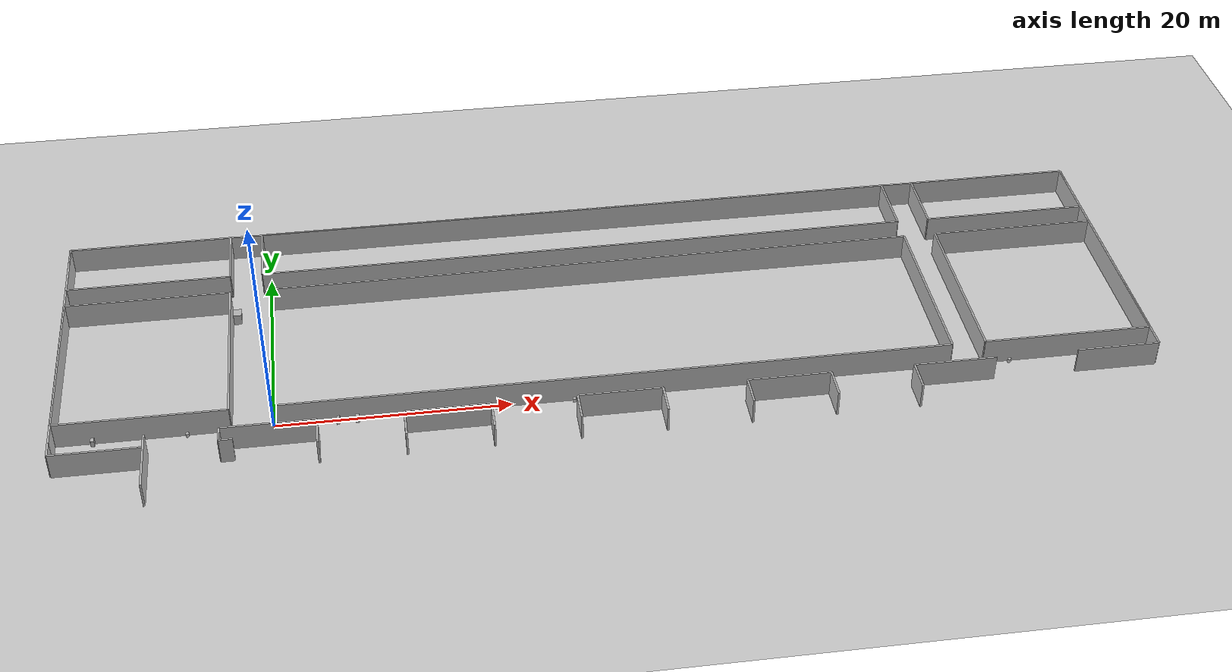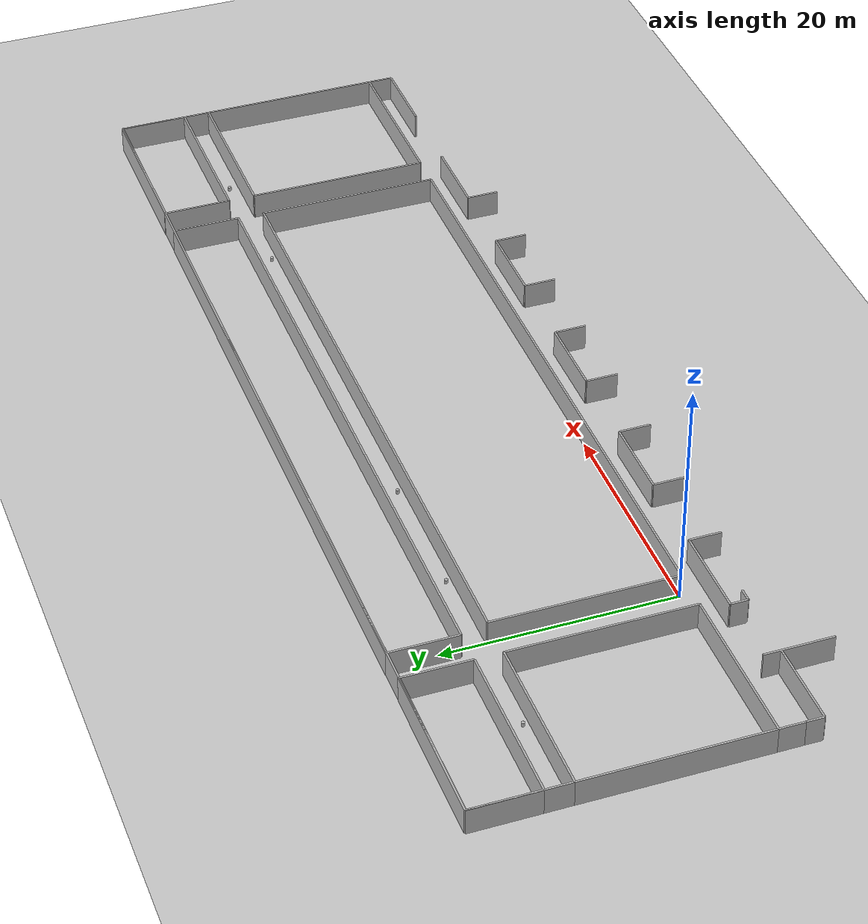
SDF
<sdf version='1.6'>
  <world name='default'>
    <light name='sun' type='directional'>
      <cast_shadows>1</cast_shadows>
      <pose frame=''>0 0 10 0 -0 0</pose>
      <diffuse>0.8 0.8 0.8 1</diffuse>
      <specular>0.2 0.2 0.2 1</specular>
      <attenuation>
        <range>1000</range>
        <constant>0.9</constant>
        <linear>0.01</linear>
        <quadratic>0.001</quadratic>
      </attenuation>
      <direction>-0.5 0.1 -0.9</direction>
    </light>
    <model name='ground_plane'>
      <static>1</static>
      <link name='link'>
        <collision name='collision'>
          <geometry>
            <plane>
              <normal>0 0 1</normal>
              <size>100 100</size>
            </plane>
          </geometry>
          <surface>
            <friction>
              <ode>
                <mu>100</mu>
                <mu2>50</mu2>
              </ode>
              <torsional>
                <ode/>
              </torsional>
            </friction>
            <contact>
              <ode/>
            </contact>
            <bounce/>
          </surface>
          <max_contacts>10</max_contacts>
        </collision>
        <visual name='visual'>
          <cast_shadows>0</cast_shadows>
          <geometry>
            <plane>
              <normal>0 0 1</normal>
              <size>100 100</size>
            </plane>
          </geometry>
          <material>
            <script>
              <uri>file://media/materials/scripts/gazebo.material</uri>
              <name>Gazebo/Grey</name>
            </script>
          </material>
        </visual>
      </link>
    </model>
    <model name='model_0'>
      <pose frame=''>0 0 1 0 -0 0</pose>
      <link name='Wall_0'>
        <pose frame=''>28.988 0 0 0 -0 0</pose>
        <collision name='Wall_0_Collision'>
          <geometry>
            <box>
              <size>57.976 0.169 2.5</size>
            </box>
          </geometry>
        </collision>
        <visual name='Wall_0_Visual'>
          <geometry>
            <box>
              <size>57.976 0.169 2.5</size>
            </box>
          </geometry>
        </visual>
      </link>
      <link name='Wall_1'>
        <pose frame=''>28.988 16 0 0 -0 0</pose>
        <collision name='Wall_1_Collision'>
          <geometry>
            <box>
              <size>57.976 0.169 2.5</size>
            </box>
          </geometry>
        </collision>
        <visual name='Wall_1_Visual'>
          <geometry>
            <box>
              <size>57.976 0.169 2.5</size>
            </box>
          </geometry>
        </visual>
      </link>
      <link name='Wall_2'>
        <pose frame=''>0 8 0 0 -0 1.5707</pose>
        <collision name='Wall_2_Collision'>
          <geometry>
            <box>
              <size>16 0.169 2.5</size>
            </box>
          </geometry>
        </collision>
        <visual name='Wall_2_Visual'>
          <geometry>
            <box>
              <size>16 0.169 2.5</size>
            </box>
          </geometry>
        </visual>
      </link>
      <link name='Wall_3'>
        <pose frame=''>57.976 8 0 0 -0 1.5707</pose>
        <collision name='Wall_3_Collision'>
          <geometry>
            <box>
              <size>16 0.169 2.5</size>
            </box>
          </geometry>
        </collision>
        <visual name='Wall_3_Visual'>
          <geometry>
            <box>
              <size>16 0.169 2.5</size>
            </box>
          </geometry>
        </visual>
      </link>
      <static>1</static>
    </model>
    <model name='model_1'>
      <pose frame=''>60.9 0 1 0 -0 0</pose>
      <link name='Wall_0'>
        <pose frame=''>7.369 0 0 0 -0 0</pose>
        <collision name='Wall_0_Collision'>
          <geometry>
            <box>
              <size>14.738 0.169 2.5</size>
            </box>
          </geometry>
        </collision>
        <visual name='Wall_0_Visual'>
          <geometry>
            <box>
              <size>14.738 0.169 2.5</size>
            </box>
          </geometry>
        </visual>
      </link>
      <link name='Wall_1'>
        <pose frame=''>7.369 16 0 0 -0 0</pose>
        <collision name='Wall_1_Collision'>
          <geometry>
            <box>
              <size>14.738 0.169 2.5</size>
            </box>
          </geometry>
        </collision>
        <visual name='Wall_1_Visual'>
          <geometry>
            <box>
              <size>14.738 0.169 2.5</size>
            </box>
          </geometry>
        </visual>
      </link>
      <link name='Wall_2'>
        <pose frame=''>0 8 0 0 -0 1.5707</pose>
        <collision name='Wall_2_Collision'>
          <geometry>
            <box>
              <size>16 0.169 2.5</size>
            </box>
          </geometry>
        </collision>
        <visual name='Wall_2_Visual'>
          <geometry>
            <box>
              <size>16 0.169 2.5</size>
            </box>
          </geometry>
        </visual>
      </link>
      <link name='Wall_3'>
        <pose frame=''>14.738 8 0 0 -0 1.5707</pose>
        <collision name='Wall_3_Collision'>
          <geometry>
            <box>
              <size>16 0.169 2.5</size>
            </box>
          </geometry>
        </collision>
        <visual name='Wall_3_Visual'>
          <geometry>
            <box>
              <size>16 0.169 2.5</size>
            </box>
          </geometry>
        </visual>
      </link>
      <static>1</static>
    </model>
    <model name='model_2'>
      <pose frame=''>-17.962 0 1 0 -0 0</pose>
      <link name='Wall_0'>
        <pose frame=''>7.219 0 0 0 -0 0</pose>
        <collision name='Wall_0_Collision'>
          <geometry>
            <box>
              <size>14.438 0.169 2.5</size>
            </box>
          </geometry>
        </collision>
        <visual name='Wall_0_Visual'>
          <geometry>
            <box>
              <size>14.438 0.169 2.5</size>
            </box>
          </geometry>
        </visual>
      </link>
      <link name='Wall_1'>
        <pose frame=''>7.219 16 0 0 -0 0</pose>
        <collision name='Wall_1_Collision'>
          <geometry>
            <box>
              <size>14.438 0.169 2.5</size>
            </box>
          </geometry>
        </collision>
        <visual name='Wall_1_Visual'>
          <geometry>
            <box>
              <size>14.438 0.169 2.5</size>
            </box>
          </geometry>
        </visual>
      </link>
      <link name='Wall_2'>
        <pose frame=''>0 8 0 0 -0 1.5707</pose>
        <collision name='Wall_2_Collision'>
          <geometry>
            <box>
              <size>16 0.169 2.5</size>
            </box>
          </geometry>
        </collision>
        <visual name='Wall_2_Visual'>
          <geometry>
            <box>
              <size>16 0.169 2.5</size>
            </box>
          </geometry>
        </visual>
      </link>
      <link name='Wall_3'>
        <pose frame=''>14.438 8 0 0 -0 1.5707</pose>
        <collision name='Wall_3_Collision'>
          <geometry>
            <box>
              <size>16 0.169 2.5</size>
            </box>
          </geometry>
        </collision>
        <visual name='Wall_3_Visual'>
          <geometry>
            <box>
              <size>16 0.169 2.5</size>
            </box>
          </geometry>
        </visual>
      </link>
      <static>1</static>
    </model>
    <model name='model_3'>
      <pose frame=''>-17.962 18.362 1 0 -0 0</pose>
      <link name='Wall_0'>
        <pose frame=''>7.219 0 0 0 -0 0</pose>
        <collision name='Wall_0_Collision'>
          <geometry>
            <box>
              <size>14.438 0.169 2.5</size>
            </box>
          </geometry>
        </collision>
        <visual name='Wall_0_Visual'>
          <geometry>
            <box>
              <size>14.438 0.169 2.5</size>
            </box>
          </geometry>
        </visual>
      </link>
      <link name='Wall_1'>
        <pose frame=''>7.219 6 0 0 -0 0</pose>
        <collision name='Wall_1_Collision'>
          <geometry>
            <box>
              <size>14.438 0.169 2.5</size>
            </box>
          </geometry>
        </collision>
        <visual name='Wall_1_Visual'>
          <geometry>
            <box>
              <size>14.438 0.169 2.5</size>
            </box>
          </geometry>
        </visual>
      </link>
      <link name='Wall_2'>
        <pose frame=''>0 3 0 0 -0 1.5707</pose>
        <collision name='Wall_2_Collision'>
          <geometry>
            <box>
              <size>6 0.169 2.5</size>
            </box>
          </geometry>
        </collision>
        <visual name='Wall_2_Visual'>
          <geometry>
            <box>
              <size>6 0.169 2.5</size>
            </box>
          </geometry>
        </visual>
      </link>
      <link name='Wall_3'>
        <pose frame=''>14.438 3 0 0 -0 1.5707</pose>
        <collision name='Wall_3_Collision'>
          <geometry>
            <box>
              <size>6 0.169 2.5</size>
            </box>
          </geometry>
        </collision>
        <visual name='Wall_3_Visual'>
          <geometry>
            <box>
              <size>6 0.169 2.5</size>
            </box>
          </geometry>
        </visual>
      </link>
      <static>1</static>
    </model>
    <model name='model_4'>
      <pose frame=''>-0.636 18.362 1 0 -0 0</pose>
      <link name='Wall_0'>
        <pose frame=''>29.306 0 0 0 -0 0</pose>
        <collision name='Wall_0_Collision'>
          <geometry>
            <box>
              <size>58.612 0.169 2.5</size>
            </box>
          </geometry>
        </collision>
        <visual name='Wall_0_Visual'>
          <geometry>
            <box>
              <size>58.612 0.169 2.5</size>
            </box>
          </geometry>
        </visual>
      </link>
      <link name='Wall_1'>
        <pose frame=''>29.306 6 0 0 -0 0</pose>
        <collision name='Wall_1_Collision'>
          <geometry>
            <box>
              <size>58.612 0.169 2.5</size>
            </box>
          </geometry>
        </collision>
        <visual name='Wall_1_Visual'>
          <geometry>
            <box>
              <size>58.612 0.169 2.5</size>
            </box>
          </geometry>
        </visual>
      </link>
      <link name='Wall_2'>
        <pose frame=''>0 3 0 0 -0 1.5707</pose>
        <collision name='Wall_2_Collision'>
          <geometry>
            <box>
              <size>6 0.169 2.5</size>
            </box>
          </geometry>
        </collision>
        <visual name='Wall_2_Visual'>
          <geometry>
            <box>
              <size>6 0.169 2.5</size>
            </box>
          </geometry>
        </visual>
      </link>
      <link name='Wall_3'>
        <pose frame=''>58.612 3 0 0 -0 1.5707</pose>
        <collision name='Wall_3_Collision'>
          <geometry>
            <box>
              <size>6 0.169 2.5</size>
            </box>
          </geometry>
        </collision>
        <visual name='Wall_3_Visual'>
          <geometry>
            <box>
              <size>6 0.169 2.5</size>
            </box>
          </geometry>
        </visual>
      </link>
      <static>1</static>
    </model>
    <model name='model_5'>
      <pose frame=''>60.9 18.362 1 0 -0 0</pose>
      <link name='Wall_0'>
        <pose frame=''>7.369 0 0 0 -0 0</pose>
        <collision name='Wall_0_Collision'>
          <geometry>
            <box>
              <size>14.738 0.169 2.5</size>
            </box>
          </geometry>
        </collision>
        <visual name='Wall_0_Visual'>
          <geometry>
            <box>
              <size>14.738 0.169 2.5</size>
            </box>
          </geometry>
        </visual>
      </link>
      <link name='Wall_1'>
        <pose frame=''>7.369 6 0 0 -0 0</pose>
        <collision name='Wall_1_Collision'>
          <geometry>
            <box>
              <size>14.738 0.169 2.5</size>
            </box>
          </geometry>
        </collision>
        <visual name='Wall_1_Visual'>
          <geometry>
            <box>
              <size>14.738 0.169 2.5</size>
            </box>
          </geometry>
        </visual>
      </link>
      <link name='Wall_2'>
        <pose frame=''>0 3 0 0 -0 1.5707</pose>
        <collision name='Wall_2_Collision'>
          <geometry>
            <box>
              <size>6 0.169 2.5</size>
            </box>
          </geometry>
        </collision>
        <visual name='Wall_2_Visual'>
          <geometry>
            <box>
              <size>6 0.169 2.5</size>
            </box>
          </geometry>
        </visual>
      </link>
      <link name='Wall_3'>
        <pose frame=''>14.738 3 0 0 -0 1.5707</pose>
        <collision name='Wall_3_Collision'>
          <geometry>
            <box>
              <size>6 0.169 2.5</size>
            </box>
          </geometry>
        </collision>
        <visual name='Wall_3_Visual'>
          <geometry>
            <box>
              <size>6 0.169 2.5</size>
            </box>
          </geometry>
        </visual>
      </link>
      <static>1</static>
    </model>
    <model name='model_6'>
      <pose frame=''>-17.962 -2.202 1 0 -0 0</pose>
      <link name='Wall_0'>
        <pose frame=''>0 -0.755 0 0 -0 1.5707</pose>
        <collision name='Wall_0_Collision'>
          <geometry>
            <box>
              <size>1.51 0.169 2.5</size>
            </box>
          </geometry>
        </collision>
        <visual name='Wall_0_Visual'>
          <geometry>
            <box>
              <size>1.51 0.169 2.5</size>
            </box>
          </geometry>
        </visual>
      </link>
      <link name='Wall_1'>
        <pose frame=''>3.809 -1.51 0 0 -0 0</pose>
        <collision name='Wall_1_Collision'>
          <geometry>
            <box>
              <size>7.618 0.169 2.5</size>
            </box>
          </geometry>
        </collision>
        <visual name='Wall_1_Visual'>
          <geometry>
            <box>
              <size>7.618 0.169 2.5</size>
            </box>
          </geometry>
        </visual>
      </link>
      <link name='Wall_2'>
        <pose frame=''>7.618 -3.005 0 0 -0 1.5707</pose>
        <collision name='Wall_2_Collision'>
          <geometry>
            <box>
              <size>6.01 0.169 2.5</size>
            </box>
          </geometry>
        </collision>
        <visual name='Wall_2_Visual'>
          <geometry>
            <box>
              <size>6.01 0.169 2.5</size>
            </box>
          </geometry>
        </visual>
      </link>
      <link name='Wall_3'>
        <pose frame=''>13.638 -0.755 0 0 -0 1.5707</pose>
        <collision name='Wall_3_Collision'>
          <geometry>
            <box>
              <size>1.51 0.169 2.5</size>
            </box>
          </geometry>
        </collision>
        <visual name='Wall_3_Visual'>
          <geometry>
            <box>
              <size>1.51 0.169 2.5</size>
            </box>
          </geometry>
        </visual>
      </link>
      <link name='Wall_4'>
        <pose frame=''>14.214 -1.51 0 0 -0 0</pose>
        <collision name='Wall_4_Collision'>
          <geometry>
            <box>
              <size>1.152 0.169 2.5</size>
            </box>
          </geometry>
        </collision>
        <visual name='Wall_4_Visual'>
          <geometry>
            <box>
              <size>1.152 0.169 2.5</size>
            </box>
          </geometry>
        </visual>
      </link>
      <link name='Wall_5'>
        <pose frame=''>17.619 0 0 0 -0 0</pose>
        <collision name='Wall_5_Collision'>
          <geometry>
            <box>
              <size>7.962 0.169 2.5</size>
            </box>
          </geometry>
        </collision>
        <visual name='Wall_5_Visual'>
          <geometry>
            <box>
              <size>7.962 0.169 2.5</size>
            </box>
          </geometry>
        </visual>
      </link>
      <link name='Wall_6'>
        <pose frame=''>21.6 -1.39375 0 0 -0 1.5707</pose>
        <collision name='Wall_6_Collision'>
          <geometry>
            <box>
              <size>2.7875 0.169 2.5</size>
            </box>
          </geometry>
        </collision>
        <visual name='Wall_6_Visual'>
          <geometry>
            <box>
              <size>2.7875 0.169 2.5</size>
            </box>
          </geometry>
        </visual>
      </link>
      <link name='Wall_7'>
        <pose frame=''>28.8 -1.39375 0 0 -0 1.5707</pose>
        <collision name='Wall_7_Collision'>
          <geometry>
            <box>
              <size>2.7875 0.169 2.5</size>
            </box>
          </geometry>
        </collision>
        <visual name='Wall_7_Visual'>
          <geometry>
            <box>
              <size>2.7875 0.169 2.5</size>
            </box>
          </geometry>
        </visual>
      </link>
      <link name='Wall_8'>
        <pose frame=''>32.4 0 0 0 -0 0</pose>
        <collision name='Wall_8_Collision'>
          <geometry>
            <box>
              <size>7.2 0.169 2.5</size>
            </box>
          </geometry>
        </collision>
        <visual name='Wall_8_Visual'>
          <geometry>
            <box>
              <size>7.2 0.169 2.5</size>
            </box>
          </geometry>
        </visual>
      </link>
      <link name='Wall_9'>
        <pose frame=''>36 -1.39375 0 0 -0 1.5707</pose>
        <collision name='Wall_9_Collision'>
          <geometry>
            <box>
              <size>2.7875 0.169 2.5</size>
            </box>
          </geometry>
        </collision>
        <visual name='Wall_9_Visual'>
          <geometry>
            <box>
              <size>2.7875 0.169 2.5</size>
            </box>
          </geometry>
        </visual>
      </link>
      <link name='Wall_10'>
        <pose frame=''>43.2 -1.39375 0 0 -0 1.5707</pose>
        <collision name='Wall_10_Collision'>
          <geometry>
            <box>
              <size>2.7875 0.169 2.5</size>
            </box>
          </geometry>
        </collision>
        <visual name='Wall_10_Visual'>
          <geometry>
            <box>
              <size>2.7875 0.169 2.5</size>
            </box>
          </geometry>
        </visual>
      </link>
      <link name='Wall_11'>
        <pose frame=''>46.8 0 0 0 -0 0</pose>
        <collision name='Wall_11_Collision'>
          <geometry>
            <box>
              <size>7.2 0.169 2.5</size>
            </box>
          </geometry>
        </collision>
        <visual name='Wall_11_Visual'>
          <geometry>
            <box>
              <size>7.2 0.169 2.5</size>
            </box>
          </geometry>
        </visual>
      </link>
      <link name='Wall_12'>
        <pose frame=''>50.4 -1.39375 0 0 -0 1.5707</pose>
        <collision name='Wall_12_Collision'>
          <geometry>
            <box>
              <size>2.7875 0.169 2.5</size>
            </box>
          </geometry>
        </collision>
        <visual name='Wall_12_Visual'>
          <geometry>
            <box>
              <size>2.7875 0.169 2.5</size>
            </box>
          </geometry>
        </visual>
      </link>
      <link name='Wall_13'>
        <pose frame=''>57.6 -1.39375 0 0 -0 1.5707</pose>
        <collision name='Wall_13_Collision'>
          <geometry>
            <box>
              <size>2.7875 0.169 2.5</size>
            </box>
          </geometry>
        </collision>
        <visual name='Wall_13_Visual'>
          <geometry>
            <box>
              <size>2.7875 0.169 2.5</size>
            </box>
          </geometry>
        </visual>
      </link>
      <link name='Wall_14'>
        <pose frame=''>61.2 0 0 0 -0 0</pose>
        <collision name='Wall_14_Collision'>
          <geometry>
            <box>
              <size>7.2 0.169 2.5</size>
            </box>
          </geometry>
        </collision>
        <visual name='Wall_14_Visual'>
          <geometry>
            <box>
              <size>7.2 0.169 2.5</size>
            </box>
          </geometry>
        </visual>
      </link>
      <link name='Wall_15'>
        <pose frame=''>64.8 -1.39375 0 0 -0 1.5707</pose>
        <collision name='Wall_15_Collision'>
          <geometry>
            <box>
              <size>2.7875 0.169 2.5</size>
            </box>
          </geometry>
        </collision>
        <visual name='Wall_15_Visual'>
          <geometry>
            <box>
              <size>2.7875 0.169 2.5</size>
            </box>
          </geometry>
        </visual>
      </link>
      <link name='Wall_16'>
        <pose frame=''>72 -1.39375 0 0 -0 1.5707</pose>
        <collision name='Wall_16_Collision'>
          <geometry>
            <box>
              <size>2.7875 0.169 2.5</size>
            </box>
          </geometry>
        </collision>
        <visual name='Wall_16_Visual'>
          <geometry>
            <box>
              <size>2.7875 0.169 2.5</size>
            </box>
          </geometry>
        </visual>
      </link>
      <link name='Wall_17'>
        <pose frame=''>75.6 0 0 0 -0 0</pose>
        <collision name='Wall_17_Collision'>
          <geometry>
            <box>
              <size>7.2 0.169 2.5</size>
            </box>
          </geometry>
        </collision>
        <visual name='Wall_17_Visual'>
          <geometry>
            <box>
              <size>7.2 0.169 2.5</size>
            </box>
          </geometry>
        </visual>
      </link>
      <link name='Wall_18'>
        <pose frame=''>90 0 0 0 -0 0</pose>
        <collision name='Wall_18_Collision'>
          <geometry>
            <box>
              <size>7.2 0.169 2.5</size>
            </box>
          </geometry>
        </collision>
        <visual name='Wall_18_Visual'>
          <geometry>
            <box>
              <size>7.2 0.169 2.5</size>
            </box>
          </geometry>
        </visual>
      </link>
      <static>1</static>
    </model>
    <model name='model_7'>
      <pose frame=''>-17.962 -2.202 1 0 -0 0</pose>
      <link name='Wall_0'>
        <pose frame=''>0 13.27 0 0 -0 1.5707</pose>
        <collision name='Wall_0_Collision'>
          <geometry>
            <box>
              <size>26.54 0.16 2.5</size>
            </box>
          </geometry>
        </collision>
        <visual name='Wall_0_Visual'>
          <geometry>
            <box>
              <size>26.54 0.16 2.5</size>
            </box>
          </geometry>
        </visual>
      </link>
      <link name='Wall_1'>
        <pose frame=''>46.8 26.54 0 0 -0 0</pose>
        <collision name='Wall_1_Collision'>
          <geometry>
            <box>
              <size>93.6 0.16 2.5</size>
            </box>
          </geometry>
        </collision>
        <visual name='Wall_1_Visual'>
          <geometry>
            <box>
              <size>93.6 0.16 2.5</size>
            </box>
          </geometry>
        </visual>
      </link>
      <link name='Wall_3'>
        <pose frame=''>93.6 13.27 0 0 -0 1.5707</pose>
        <collision name='Wall_3_Collision'>
          <geometry>
            <box>
              <size>26.54 0.16 2.5</size>
            </box>
          </geometry>
        </collision>
        <visual name='Wall_3_Visual'>
          <geometry>
            <box>
              <size>26.54 0.16 2.5</size>
            </box>
          </geometry>
        </visual>
      </link>
      <static>1</static>
    </model>

    <model name='unit_box'>
      <pose frame=''>5.32248 -0.34 0.3 0 -0 0</pose>
      <link name='link'>
        <inertial>
          <mass>1</mass>
          <inertia>
            <ixx>0.166667</ixx>
            <ixy>0</ixy>
            <ixz>0</ixz>
            <iyy>0.166667</iyy>
            <iyz>0</iyz>
            <izz>0.166667</izz>
          </inertia>
        </inertial>
        <collision name='collision'>
          <geometry>
            <box>
              <size>0.3 0.45 0.6</size>
            </box>
          </geometry>
        </collision>
        <visual name='visual'>
          <geometry>
            <box>
              <size>0.3 0.45 0.6</size>
            </box>
          </geometry>
        </visual>
      </link>
    </model>
    <model name='unit_box_0'>
      <pose frame=''>6.92514 -0.34 0.3 0 -0 0</pose>
      <link name='link'>
        <inertial>
          <mass>1</mass>
          <inertia>
            <ixx>0.166667</ixx>
            <ixy>0</ixy>
            <ixz>0</ixz>
            <iyy>0.166667</iyy>
            <iyz>0</iyz>
            <izz>0.166667</izz>
          </inertia>
        </inertial>
        <collision name='collision'>
          <geometry>
            <box>
              <size>0.3 0.45 0.6</size>
            </box>
          </geometry>
        </collision>
        <visual name='visual'>
          <geometry>
            <box>
              <size>0.3 0.45 0.6</size>
            </box>
          </geometry>
        </visual>
      </link>
    </model>
    <model name='unit_cylinder'>
      <pose frame=''>-7.09703 -0.34 0.175 0 -0 0</pose>
      <link name='link'>
        <inertial>
          <mass>1</mass>
          <inertia>
            <ixx>0.145833</ixx>
            <ixy>0</ixy>
            <ixz>0</ixz>
            <iyy>0.145833</iyy>
            <iyz>0</iyz>
            <izz>0.125</izz>
          </inertia>
        </inertial>
        <collision name='collision'>
          <geometry>
            <cylinder>
              <radius>0.15</radius>
              <length>0.35</length>
            </cylinder>
          </geometry>
        </collision>
        <visual name='visual'>
          <geometry>
            <cylinder>
              <radius>0.15</radius>
              <length>0.35</length>
            </cylinder>
          </geometry>
        </visual>
      </link>
    </model>
    <model name='unit_box_1'>
      <pose frame=''>-14.7973 -0.34 0.3 0 -0 0</pose>
      <link name='link'>
        <inertial>
          <mass>1</mass>
          <inertia>
            <ixx>0.166667</ixx>
            <ixy>0</ixy>
            <ixz>0</ixz>
            <iyy>0.166667</iyy>
            <iyz>0</iyz>
            <izz>0.166667</izz>
          </inertia>
        </inertial>
        <collision name='collision'>
          <geometry>
            <box>
              <size>0.3 0.45 0.6</size>
            </box>
          </geometry>
        </collision>
        <visual name='visual'>
          <geometry>
            <box>
              <size>0.3 0.45 0.6</size>
            </box>
          </geometry>
        </visual>
      </link>
    </model>
    <model name='unit_cylinder_0'>
      <pose frame=''>25.205 -0.34 0.175 0 -0 0</pose>
      <link name='link'>
        <inertial>
          <mass>1</mass>
          <inertia>
            <ixx>0.145833</ixx>
            <ixy>0</ixy>
            <ixz>0</ixz>
            <iyy>0.145833</iyy>
            <iyz>0</iyz>
            <izz>0.125</izz>
          </inertia>
        </inertial>
        <collision name='collision'>
          <geometry>
            <cylinder>
              <radius>0.15</radius>
              <length>0.35</length>
            </cylinder>
          </geometry>
        </collision>
        <visual name='visual'>
          <geometry>
            <cylinder>
              <radius>0.15</radius>
              <length>0.35</length>
            </cylinder>
          </geometry>
        </visual>
      </link>
    </model>
    <model name='unit_cylinder_2'>
      <pose frame=''>18.6073 -0.34 0.175 0 -0 0</pose>
      <link name='link'>
        <inertial>
          <mass>1</mass>
          <inertia>
            <ixx>0.145833</ixx>
            <ixy>0</ixy>
            <ixz>0</ixz>
            <iyy>0.145833</iyy>
            <iyz>0</iyz>
            <izz>0.125</izz>
          </inertia>
        </inertial>
        <collision name='collision'>
          <geometry>
            <cylinder>
              <radius>0.15</radius>
              <length>0.35</length>
            </cylinder>
          </geometry>
        </collision>
        <visual name='visual'>
          <geometry>
            <cylinder>
              <radius>0.15</radius>
              <length>0.35</length>
            </cylinder>
          </geometry>
        </visual>
      </link>
    </model>
    <model name='unit_box_2'>
      <pose frame=''>-3 14.6033 0.5 0 -0 0</pose>
      <link name='link'>
        <inertial>
          <mass>1</mass>
          <inertia>
            <ixx>0.166667</ixx>
            <ixy>0</ixy>
            <ixz>0</ixz>
            <iyy>0.166667</iyy>
            <iyz>0</iyz>
            <izz>0.166667</izz>
          </inertia>
        </inertial>
        <collision name='collision'>
          <geometry>
            <box>
              <size>0.7 0.9 1</size>
            </box>
          </geometry>
        </collision>
        <visual name='visual'>
          <geometry>
            <box>
              <size>0.7 0.9 1</size>
            </box>
          </geometry>
        </visual>
      </link>
    </model>
    <model name='unit_cylinder_3'>
      <pose frame=''>7.65265 16.6 0.175 0 -0 0</pose>
      <link name='link'>
        <inertial>
          <mass>1</mass>
          <inertia>
            <ixx>0.145833</ixx>
            <ixy>0</ixy>
            <ixz>0</ixz>
            <iyy>0.145833</iyy>
            <iyz>0</iyz>
            <izz>0.125</izz>
          </inertia>
        </inertial>
        <collision name='collision'>
          <geometry>
            <cylinder>
              <radius>0.15</radius>
              <length>0.35</length>
            </cylinder>
          </geometry>
        </collision>
        <visual name='visual'>
          <geometry>
            <cylinder>
              <radius>0.15</radius>
              <length>0.35</length>
            </cylinder>
          </geometry>
        </visual>
      </link>
    </model>
    <model name='unit_cylinder_4'>
      <pose frame=''>19.2694 16.6 0.175 0 -0 0</pose>
      <link name='link'>
        <inertial>
          <mass>1</mass>
          <inertia>
            <ixx>0.145833</ixx>
            <ixy>0</ixy>
            <ixz>0</ixz>
            <iyy>0.145833</iyy>
            <iyz>0</iyz>
            <izz>0.125</izz>
          </inertia>
        </inertial>
        <collision name='collision'>
          <geometry>
            <cylinder>
              <radius>0.15</radius>
              <length>0.35</length>
            </cylinder>
          </geometry>
        </collision>
        <visual name='visual'>
          <geometry>
            <cylinder>
              <radius>0.15</radius>
              <length>0.35</length>
            </cylinder>
          </geometry>
        </visual>
      </link>
    </model>
    <model name='unit_cylinder_6'>
      <pose frame=''>53.6665 16.6 0.175 0 -0 0</pose>
      <link name='link'>
        <inertial>
          <mass>1</mass>
          <inertia>
            <ixx>0.145833</ixx>
            <ixy>0</ixy>
            <ixz>0</ixz>
            <iyy>0.145833</iyy>
            <iyz>0</iyz>
            <izz>0.125</izz>
          </inertia>
        </inertial>
        <collision name='collision'>
          <geometry>
            <cylinder>
              <radius>0.15</radius>
              <length>0.35</length>
            </cylinder>
          </geometry>
        </collision>
        <visual name='visual'>
          <geometry>
            <cylinder>
              <radius>0.15</radius>
              <length>0.35</length>
            </cylinder>
          </geometry>
        </visual>
      </link>
    </model>
    <model name='unit_cylinder_7'>
      <pose frame=''>65.6597 16.9792 0.175 0 -0 0</pose>
      <link name='link'>
        <inertial>
          <mass>1</mass>
          <inertia>
            <ixx>0.145833</ixx>
            <ixy>0</ixy>
            <ixz>0</ixz>
            <iyy>0.145833</iyy>
            <iyz>0</iyz>
            <izz>0.125</izz>
          </inertia>
        </inertial>
        <collision name='collision'>
          <geometry>
            <cylinder>
              <radius>0.15</radius>
              <length>0.35</length>
            </cylinder>
          </geometry>
        </collision>
        <visual name='visual'>
          <geometry>
            <cylinder>
              <radius>0.15</radius>
              <length>0.35</length>
            </cylinder>
          </geometry>
        </visual>
      </link>
    </model>
    <model name='unit_cylinder_8'>
      <pose frame=''>63.1739 -0.34 0.175 0 -0 0</pose>
      <link name='link'>
        <inertial>
          <mass>1</mass>
          <inertia>
            <ixx>0.145833</ixx>
            <ixy>0</ixy>
            <ixz>0</ixz>
            <iyy>0.145833</iyy>
            <iyz>0</iyz>
            <izz>0.125</izz>
          </inertia>
        </inertial>
        <collision name='collision'>
          <geometry>
            <cylinder>
              <radius>0.15</radius>
              <length>0.35</length>
            </cylinder>
          </geometry>
        </collision>
        <visual name='visual'>
          <geometry>
            <cylinder>
              <radius>0.15</radius>
              <length>0.35</length>
            </cylinder>
          </geometry>
        </visual>
      </link>
    </model>
    <model name='unit_cylinder_9'>
      <pose frame=''>-9.23458 16.6 0.175 0 -0 0</pose>
      <link name='link'>
        <inertial>
          <mass>1</mass>
          <inertia>
            <ixx>0.145833</ixx>
            <ixy>0</ixy>
            <ixz>0</ixz>
            <iyy>0.145833</iyy>
            <iyz>0</iyz>
            <izz>0.125</izz>
          </inertia>
        </inertial>
        <collision name='collision'>
          <geometry>
            <cylinder>
              <radius>0.15</radius>
              <length>0.35</length>
            </cylinder>
          </geometry>
        </collision>
        <visual name='visual'>
          <geometry>
            <cylinder>
              <radius>0.15</radius>
              <length>0.35</length>
            </cylinder>
          </geometry>
        </visual>
      </link>
    </model>
  </world>
</sdf>
